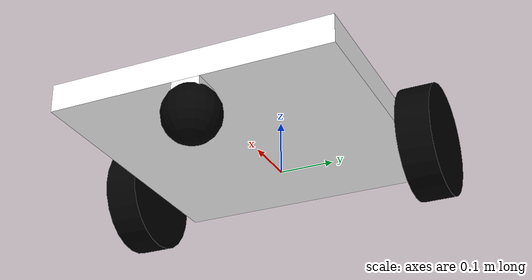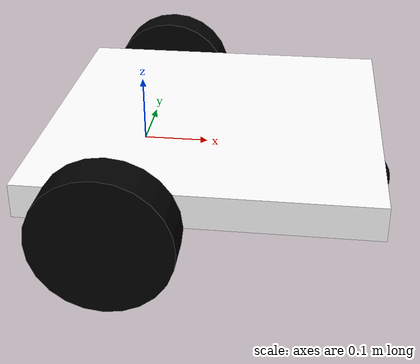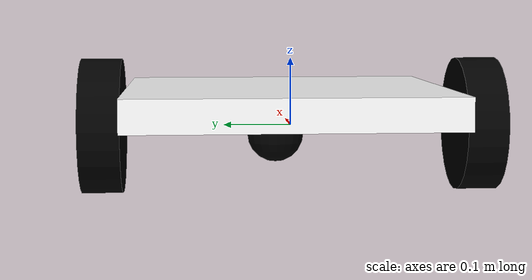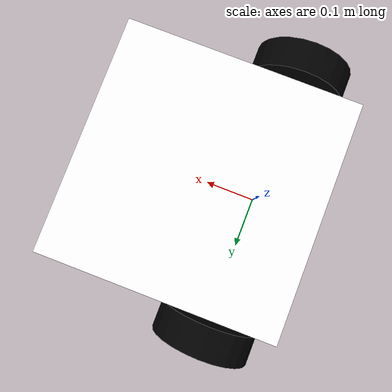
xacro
<?xml version="1.0"?>
<robot xmlns:xacro="http://www.ros.org/wiki/xacro">

    <xacro:include filename="inertial_macros.xacro"/>

    <material name="white">
        <color rgba="1 1 1 1"/>
    </material>

    <material name="orange">
        <color rgba="1 0.3 0.1 1"/>
    </material>

    <material name="blue">
        <color rgba="0.2 0.2 1 1"/>
    </material>

    <material name="black">
        <color rgba="0 0 0 1"/>
    </material>

    <material name="red">
        <color rgba="1 0 0 1"/>
    </material>

    <!-- BASE LINK -->

    <link name="base_link">

    </link>

    <!-- BASE FOOTPRINT -->

    <joint name="base_footprint_joint" type="fixed">
        <parent link="base_link"/>
        <child link="base_footprint"/>
        <origin xyz="0 0 0" rpy="0 0 0"/>
    </joint>

    <link name="base_footprint">
    </link>

    <!-- CHASSIS LINK -->

    <joint name="chassis_joint" type="fixed">
        <parent link="base_link"/>
        <child link="chassis"/>
        <origin xyz="-0.135 0 0"/>
    </joint>

    <link name="chassis">
        <visual>
            <origin xyz="0.25 0 0.025"/>
            <geometry>
                <box size="0.5 0.5 0.05"/>
            </geometry>
            <material name="white"/>
        </visual>
        <collision>
            <origin xyz="0.25 0 0.025"/>
            <geometry>
                <box size="0.5 0.5 0.05"/>
            </geometry>
        </collision>
        <xacro:inertial_box mass="1.5" x="0.5" y="0.5" z="0.05">
            <origin xyz="0.25 0 0.025" rpy="0 0 0"/>
        </xacro:inertial_box>
    </link>

    <gazebo reference="chassis">
        <material>Gazebo/White</material>
    </gazebo>

    <!-- LEFT WHEEL LINK -->

    <joint name="left_wheel_joint" type="continuous">
        <parent link="base_link"/>
        <child link="left_wheel"/>
        <origin xyz="0 0.28 0" rpy="-${pi/2} 0 0"/>
        <axis xyz="0 0 1"/>
    </joint>

    <link name="left_wheel">
        <visual>
            <geometry>
                <cylinder radius="0.1" length="0.06"/>
            </geometry>
            <material name="black"/>
        </visual>
        <collision>
            <geometry>
                <sphere radius="0.1"/>
            </geometry>
        </collision>
        <xacro:inertial_cylinder mass="1" length="0.06" radius="0.1">
            <origin xyz="0 0 0" rpy="0 0 0"/>
        </xacro:inertial_cylinder>
    </link>

    <gazebo reference="left_wheel">
        <material>Gazebo/Black</material>
    </gazebo>

    <!-- RIGHT WHEEL LINK -->

    <joint name="right_wheel_joint" type="continuous">
        <parent link="base_link"/>
        <child link="right_wheel"/>
        <origin xyz="0 -0.28 0" rpy="${pi/2} 0 0"/>
        <axis xyz="0 0 -1"/>
    </joint>

    <link name="right_wheel">
        <visual>
            <geometry>
                <cylinder radius="0.1" length="0.06"/>
            </geometry>
            <material name="black"/>
        </visual>
        <collision>
            <geometry>
                <sphere radius="0.1"/>
            </geometry>
        </collision>
        <xacro:inertial_cylinder mass="1" length="0.06" radius="0.1">
            <origin xyz="0 0 0" rpy="0 0 0"/>
        </xacro:inertial_cylinder>
    </link>

    <gazebo reference="right_wheel">
        <material>Gazebo/Black</material>
    </gazebo>

    <!-- CASTER WHEEL BASE LINK -->

    <joint name="caster_wheel_base_joint" type="fixed">
        <parent link="chassis"/>
        <child link="caster_wheel_base"/>
        <origin xyz="0.475 0 -0.025"/>
    </joint>

    <link name="caster_wheel_base">
        <visual>
            <geometry>
                <box size="0.05 0.05 0.05"/>
            </geometry>
            <material name="white"/>
        </visual>
        <collision>
            <geometry>
                <box size="0.05 0.05 0.05"/>
            </geometry>
        </collision>
        <xacro:inertial_box mass="0.1" x="0.05" y="0.05" z="0.05">
            <origin xyz="0 0 0" rpy="0 0 0"/>
        </xacro:inertial_box>
    </link>

    <gazebo reference="caster_wheel_base">
        <material>Gazebo/White</material>
    </gazebo>

    <!-- CASTER WHEEL LINK -->

    <joint name="caster_wheel_joint" type="fixed">
        <parent link="caster_wheel_base"/>
        <child link="caster_wheel"/>
        <origin xyz="0 0 -0.025"/>
    </joint>

    <link name="caster_wheel">
        <visual>
            <geometry>
                <sphere radius="0.05"/>
            </geometry>
            <material name="black"/>
        </visual>
        <collision>
            <geometry>
                <sphere radius="0.05"/>
            </geometry>
        </collision>
        <xacro:inertial_sphere mass="0.2" radius="0.05">
            <origin xyz="0 0 0" rpy="0 0 0"/>
        </xacro:inertial_sphere>
    </link>

    <gazebo reference="caster_wheel">
        <material>Gazebo/Black</material>
        <mu1 value="0.001"/>
        <mu2 value="0.001"/>
    </gazebo>

</robot>
